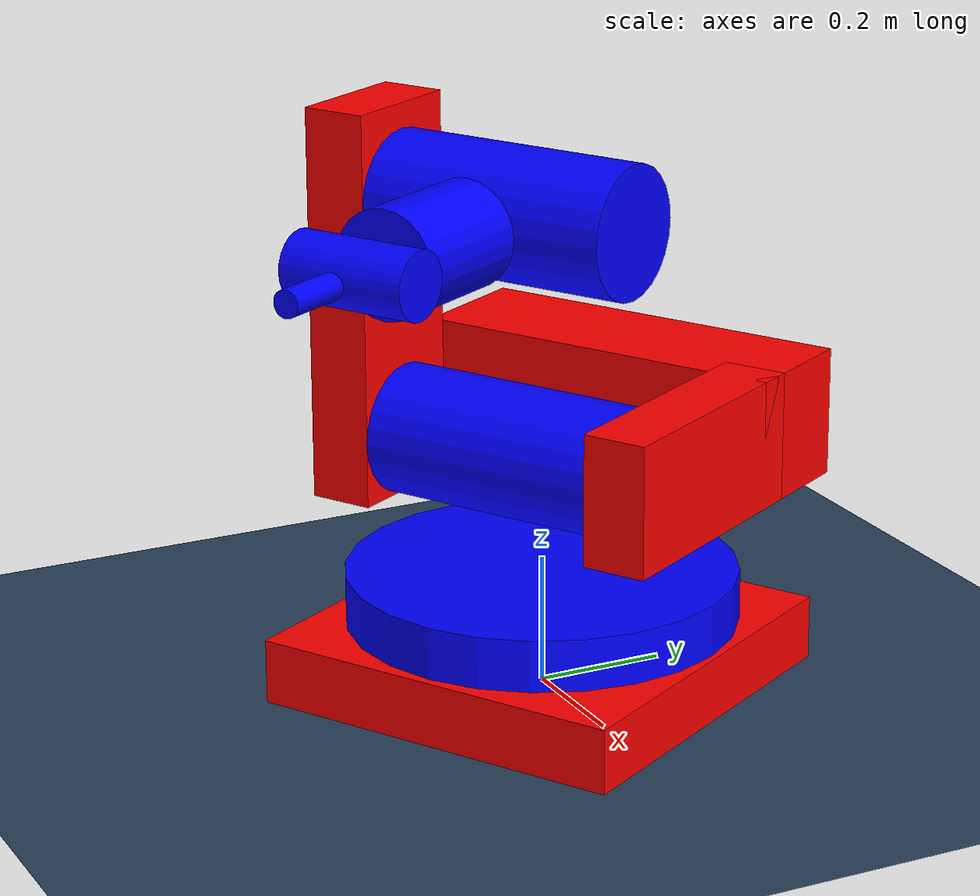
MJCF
<mujoco>
  <asset>
    <texture name="grid" type="2d" builtin="checker" rgb1=".1 .2 .3"
     rgb2=".2 .3 .4" width="300" height="300" mark="none"/>
    <material name="grid" texture="grid" texrepeat="1 1"
     texuniform="true" reflectance=".1"/>
  </asset>

  <visual>
    <scale framelength="0.2" framewidth="0.02"/>
  </visual>

  <default>
  <joint armature="0.01" damping="100."/> <!-- NEW: Added damping="0.5" -->
  </default>

  <worldbody>

    <light name="light" pos="0 0 4"/>
    <geom name="floor" type="plane" pos="0 0 0" size="30 30 .01" material="grid" friction=".001"/>
    <camera name="fixed" pos="0 -1.5 2." euler="45 0 0"/>

    <!-- Base del Abb -->
    <body name="abb_base" pos="0 0 0.05" euler = "0 0 -60">
        <geom name="abb_base_geom" type="box" size="0.3 0.3 0.05" rgba="1 0 0 1"/>

        <!-- Primer Joint (child body) -->
        <body name="first_joint_body" pos="0 0 0.342">
            <geom name="first_joint_geom" type="cylinder" size="0.3 0.04" rgba="0 0 1 1" pos="0 0 -0.245"/>
            <geom name="back_side_ABB" type="box" size="0.1 0.3 0.1" rgba="1 0 0 1" pos="-0.245 0 0"/>
            <geom name="left_side_ABB" type="box" size="0.2 0.05 0.1" rgba="1 0 0 1" pos="0 0.25 0"/>

            <joint name="first_joint" type="hinge"/>

            <!-- Segundo Joint (child body) -->
            <body name="second_joint_body" pos="0.06988 0 0" euler = "90 0 90">
                <geom name="second_joint_geom" type="cylinder" size="0.1 0.2" rgba="0 0 1 1" pos="0 0 0"/>
                <geom name="right_side_ABB" type="box" size="0.3 0.1 0.05" rgba="1 0 0 1" pos="0.2 0 0.25"/>

                <joint name="second_joint" type="hinge"/>

                <!-- Third Joint (child body) -->
                <body name="third_joint_body" pos="0.362 0 0" euler = "0 0 180">
                    <geom name="third_joint_geom" type="cylinder" size="0.1 0.2" rgba="0 0 1 1" pos="0 0 0"/>
                    <joint name="third_joint" type="hinge"/>

                    <!-- Fourth Joint (child body) -->
                    <body name="fourth_joint_body" pos="0 0.380 0" euler = "-90 0 180">
                        <geom name="fourth_joint_geom" type="cylinder" size="0.08 0.1" rgba="0 0 1 1" pos="0 0 -0.155"/>
                        <joint name="fourth_joint" type="hinge"/>

                        <!-- Fifth Joint (child body) -->
                        <body name="fifth_joint_body" pos="0 0 0" euler = "-90 0 180">
                            <geom name="fifth_joint_geom" type="cylinder" size="0.05 0.1" rgba="0 0 1 1" pos="0 0 0"/>
                            <joint name="fifth_joint" type="hinge"/>

                            <!-- Sixth Joint (child body) -->
                            <body name="sixth_joint_body" pos="0 0.065 0" euler = "-90 0 180">
                                <geom name="sixth_joint_geom" type="cylinder" size="0.02 0.05" rgba="0 0 1 1" pos="0 0 0.05"/>
                                <joint name="sixth_joint" type="hinge"/>
                            </body>
                        </body>
                    </body>
                </body>
            </body>
        </body>
    </body>

  </worldbody>

    <actuator>
        <position name="J_1" joint="first_joint" kp="500" />
        <position name="J_2" joint="second_joint" kp="500"/>
        <position name="J_3" joint="third_joint" kp="5000" />
        <position name="J_4" joint="fourth_joint" kp="500"/>
        <position name="J_5" joint="fifth_joint" kp="500" />
        <position name="J_6" joint="sixth_joint" kp="500" />

    </actuator>

</mujoco>
